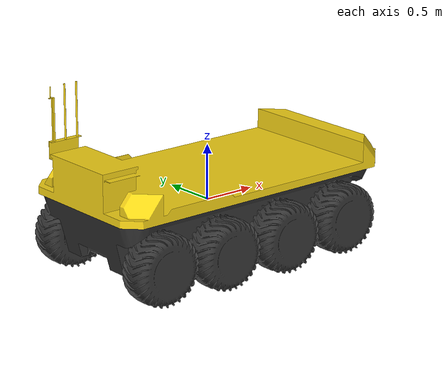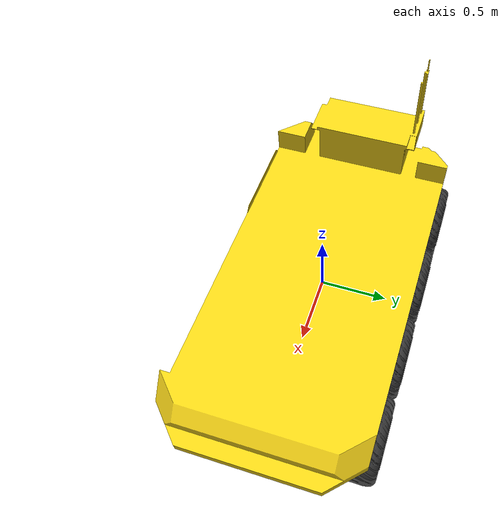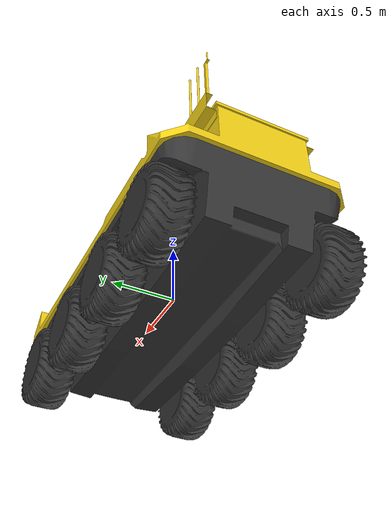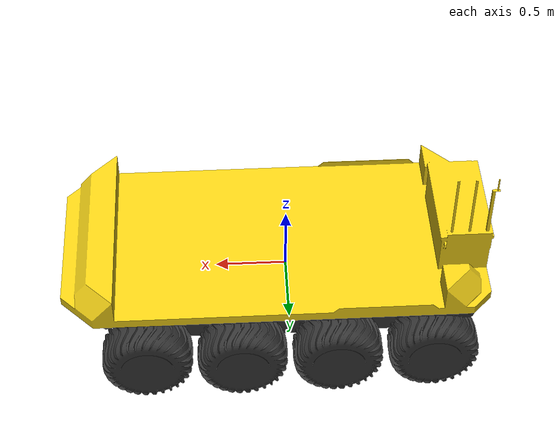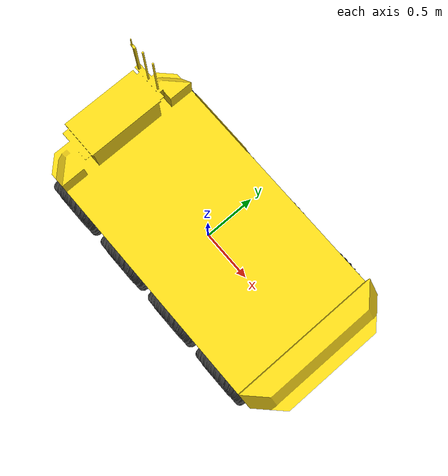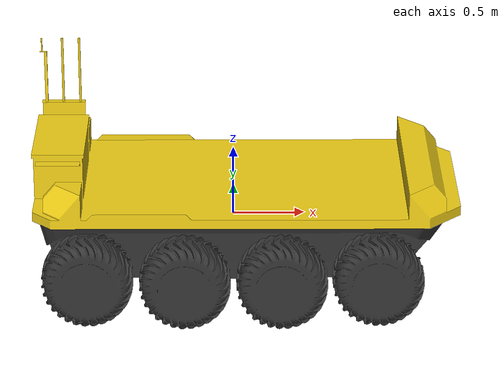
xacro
<?xml version='1.0'?>

<robot name="moose" xmlns:xacro="http://www.ros.org/wiki/xacro">

  <xacro:property name="PI" value="3.1415926535897931"/>

  <xacro:property name="wheel_radius" value="0.3175" />
  <xacro:property name="wheel_width" value="0.303" />
  <xacro:property name="wheel_mass" value="16.8" />

  <xacro:property name="front_axle_x_offset" value="1.0036" />
  <xacro:property name="front_mid_axle_x_offset" value="0.33639" />
  <xacro:property name="rear_mid_axle_x_offset" value="-0.33638" />
  <xacro:property name="rear_axle_x_offset" value="-1.01123" />
  <xacro:property name="axle_y_offset" value="0.6249" />
  <xacro:property name="high_axle_z_offset" value="0.04115" />
  <xacro:property name="low_axle_z_offset" value="0.01892" />

  <xacro:property name="chassis_length" value="2.9532" />
  <xacro:property name="chassis_width" value="1.416" />
  <xacro:property name="chassis_height" value="0.52705" />
  <xacro:property name="chassis_mass" value="1590" />

  <xacro:property name="dummy_inertia" value="1e-09"/>

  <xacro:macro name="wheel_inertia" params="m r h">
    <inertia ixx="${m*(3*r*r+h*h)/12}" ixy="0" ixz="0"
             iyy="${m*r*r/2}" iyz="0"
             izz="${m*(3*r*r+h*h)/12}" />
  </xacro:macro>

  <xacro:macro name="box_inertia" params="m x y z">
    <inertia ixx="${m*(y*y+z*z)/12}" ixy="0" ixz="0"
             iyy="${m*(x*x+z*z)/12}" iyz="0"
             izz="${m*(x*x+z*z)/12}" />
  </xacro:macro>

  <material name="dark_grey"><color rgba="0.2 0.2 0.2 1.0" /></material>
  <material name="light_grey"><color rgba="0.4 0.4 0.4 1.0" /></material>
  <material name="yellow"><color rgba="0.95 0.816 0.082 1.0" /></material>
  <material name="black"><color rgba="0.15 0.15 0.15 1.0" /></material>
  <material name="white"><color rgba="0.9 0.9 0.9 1.0" /></material>
  <material name="red"><color rgba="0.9 0.0 0.0 1.0" /></material>

  <xacro:macro name="wheel" params="prefix side *joint_pose">
    <link name="${prefix}_${side}_wheel_link">
      <inertial>
        <origin xyz="0 0 0" rpy="0 0 0" />
        <mass value="${wheel_mass}" />
        <xacro:wheel_inertia m="${wheel_mass}" r="${wheel_radius}" h="${wheel_width}" />
      </inertial>
      <visual>
        <origin xyz="0 ${wheel_width/2} 0" rpy="${PI/2} 0 0"/>
        <geometry>
          <mesh filename="package://moose_description/meshes/wheel.stl" />
        </geometry>
        <material name="dark_grey" />
      </visual>
      <collision>
        <origin xyz="0 0 0" rpy="${PI/2} 0 0"/>
        <geometry>
          <cylinder radius="${wheel_radius}" length="${wheel_width}"/>
        </geometry>
      </collision>
    </link>
    <joint name="${prefix}_${side}_wheel" type="continuous">
      <parent link="chassis_link"/>
      <child link="${prefix}_${side}_wheel_link"/>
      <xacro:insert_block name="joint_pose" />
      <axis xyz="0 1 0"/>
    </joint>
    <gazebo reference="${prefix}_${side}_wheel_link">
      <selfCollide>false</selfCollide>
      <mu1>0.3</mu1>
      <mu2>0.3</mu2>
      <kp value="10000000.0" />
      <kd value="1.0" />
      <fdir1 value="1 0 0" />
      <material>Gazebo/Grey</material>
    </gazebo>
    <transmission name="${prefix}_${side}_wheel_trans">
      <type>transmission_interface/SimpleTransmission</type>
      <joint name="${prefix}_${side}_wheel">
        <hardwareInterface>hardware_interface/VelocityJointInterface</hardwareInterface>
      </joint>
      <actuator name="${side}_${prefix}_actuator">
        <hardwareInterface>hardware_interface/VelocityJointInterface</hardwareInterface>
        <mechanicalReduction>1</mechanicalReduction>
      </actuator>
    </transmission>
  </xacro:macro>

  <xacro:wheel prefix="front" side="left">
    <origin xyz="${front_axle_x_offset} ${axle_y_offset*1} ${high_axle_z_offset}" rpy="0 0 0" />
  </xacro:wheel>
  <xacro:wheel prefix="front_mid" side="left">
    <origin xyz="${front_mid_axle_x_offset} ${axle_y_offset*1} ${low_axle_z_offset}" rpy="0 0 0" />
  </xacro:wheel>
  <xacro:wheel prefix="front" side="right">
    <origin xyz="${front_axle_x_offset} ${axle_y_offset*-1} ${high_axle_z_offset}" rpy="0 0 0" />
  </xacro:wheel>
  <xacro:wheel prefix="front_mid" side="right">
    <origin xyz="${front_mid_axle_x_offset} ${axle_y_offset*-1} ${low_axle_z_offset}" rpy="0 0 0" />
  </xacro:wheel>
  <xacro:wheel prefix="rear" side="left">
    <origin xyz="${rear_axle_x_offset} ${axle_y_offset*1} ${high_axle_z_offset}" rpy="0 0 0" />
  </xacro:wheel>
  <xacro:wheel prefix="rear_mid" side="left">
    <origin xyz="${rear_mid_axle_x_offset} ${axle_y_offset*1} ${low_axle_z_offset}" rpy="0 0 0" />
  </xacro:wheel>
  <xacro:wheel prefix="rear" side="right">
    <origin xyz="${rear_axle_x_offset} ${axle_y_offset*-1} ${high_axle_z_offset}" rpy="0 0 0" />
  </xacro:wheel>
  <xacro:wheel prefix="rear_mid" side="right">
    <origin xyz="${rear_mid_axle_x_offset} ${axle_y_offset*-1} ${low_axle_z_offset}" rpy="0 0 0" />
  </xacro:wheel>

  <link name="base_link"></link>

  <joint name="base_link_joint" type="fixed">
    <origin xyz="0 0 -0.263525" rpy="0 0 0" />
    <parent link="base_link"/>
    <child link="chassis_link" />
  </joint>

  <link name="chassis_link">
    <inertial>
      <origin xyz="0 0 0" rpy="0 0 0"/>
      <mass value="${chassis_mass}"/>
      <xacro:box_inertia m="${chassis_mass}" x="${chassis_length}"
                         y="${chassis_width}" z="${chassis_height}" />
    </inertial>
    <visual>
      <origin xyz="0 0 0" rpy="0 0 0"/>
      <geometry>
        <mesh filename="package://moose_description/meshes/chassis.stl" />
      </geometry>
      <material name="dark_grey" />
    </visual>
    <collision>
      <geometry>
        <mesh filename="package://moose_description/meshes/chassis-collision.stl" />
      </geometry>
    </collision>
  </link>

  <link name="drive_motor_link">
    <inertial>
      <origin xyz="0 0 0" rpy="0 0 0" />
      <mass value="0.01" />
      <inertia
        ixx="0.01" ixy="0.0" ixz="0.0"
        iyy="0.01" iyz="0.0"
        izz="0.01" />
    </inertial>
  </link>

  <joint name="drive_motor" type="continuous">
    <origin xyz="0 0 0" rpy="0 0 0" />
    <parent link="base_link"/>
    <child link="drive_motor_link" />
  </joint>

  <transmission name="drive_motor_trans">
    <type>transmission_interface/SimpleTransmission</type>
    <joint name="drive_motor">
      <hardwareInterface>hardware_interface/VelocityJointInterface</hardwareInterface>
    </joint>
    <actuator name="drive_motor_actuator">
      <mechanicalReduction>1</mechanicalReduction>
    </actuator>
  </transmission>

  <link name="steer_motor_link">
    <inertial>
      <origin xyz="0 0 0" rpy="0 0 0" />
      <mass value="0.01" />
      <inertia
        ixx="0.01" ixy="0.0" ixz="0.0"
        iyy="0.01" iyz="0.0"
        izz="0.01" />
    </inertial>
  </link>

  <joint name="steer_motor" type="continuous">
    <origin xyz="0 0 0" rpy="0 0 0" />
    <parent link="base_link"/>
    <child link="steer_motor_link" />
  </joint>

  <transmission name="steer_motor_trans">
    <type>transmission_interface/SimpleTransmission</type>
    <joint name="steer_motor">
      <hardwareInterface>hardware_interface/VelocityJointInterface</hardwareInterface>
    </joint>
    <actuator name="steer_motor_actuator">
      <mechanicalReduction>1</mechanicalReduction>
    </actuator>
  </transmission>

  <link name="top_chassis_link">
    <visual>
      <geometry>
        <mesh filename="package://moose_description/meshes/top-deck.stl" />
      </geometry>
      <material name="yellow" />
    </visual>
    <collision>
      <geometry>
        <mesh filename="package://moose_description/meshes/top-deck-collision.stl" />
      </geometry>
    </collision>
  </link>
  <gazebo reference="top_chassis_link">
      <selfCollide>false</selfCollide>
      <material>Gazebo/Yellow</material>
  </gazebo>

  <joint name="top_link_joint" type="fixed">
    <origin xyz="0 0 0.52705" rpy="0 0 0" />
    <parent link="chassis_link"/>
    <child link="top_chassis_link" />
  </joint>

  <link name="front_top_chassis_link"></link>

  <joint name="front_top_link_joint" type="fixed">
    <origin xyz="1.57075 0 0" rpy="0 0 0" />
    <parent link="top_chassis_link"/>
    <child link="front_top_chassis_link" />
  </joint>

  <link name="rear_top_chassis_link"></link>

  <joint name="rear_top_link_joint" type="fixed">
    <origin xyz="-1.3825 0 0" rpy="0 0 0" />
    <parent link="top_chassis_link"/>
    <child link="rear_top_chassis_link" />
  </joint>

  <xacro:if value="$(optenv MOOSE_GENERATOR 0)">
    <link name="generator_link">
      <visual>
        <geometry>
          <mesh filename="package://moose_description/meshes/generator.stl" />
        </geometry>
        <material name="yellow" />
      </visual>
      <collision>
        <geometry>
          <mesh filename="package://moose_description/meshes/generator-collision.stl" />
        </geometry>
      </collision>
    </link>
    <gazebo reference="generator_link">
        <selfCollide>false</selfCollide>
        <material>Gazebo/Yellow</material>
    </gazebo>

    <joint name="generator_joint" type="fixed">
      <origin xyz="-0.641204 0 0" rpy="0 0 0" />
      <parent link="top_chassis_link"/>
      <child link="generator_link" />
    </joint>
  </xacro:if>

  <link name="imu_link" />
  <joint name="imu_link_joint" type="fixed">
    <origin xyz="$(optenv MOOSE_IMU_XYZ 0 0 0)" rpy="$(optenv MOOSE_IMU_RPY 0 0 0)" />
    <parent link="chassis_link"/>
    <child link="imu_link" />
  </joint>
  <!-- Bring in simulation data for Gazebo. -->
  <xacro:include filename="$(find moose_description)/urdf/moose.gazebo" />

  <!-- Optional standard accessories, including their simulation data. The rendering
       of these into the final description is controlled by optenv variables, which
       default each one to off.-->
  <xacro:include filename="$(find moose_description)/urdf/accessories.urdf.xacro" />

  <!-- Optional custom includes. -->
  <xacro:include filename="$(optenv MOOSE_URDF_EXTRAS empty.urdf)" />
</robot>
